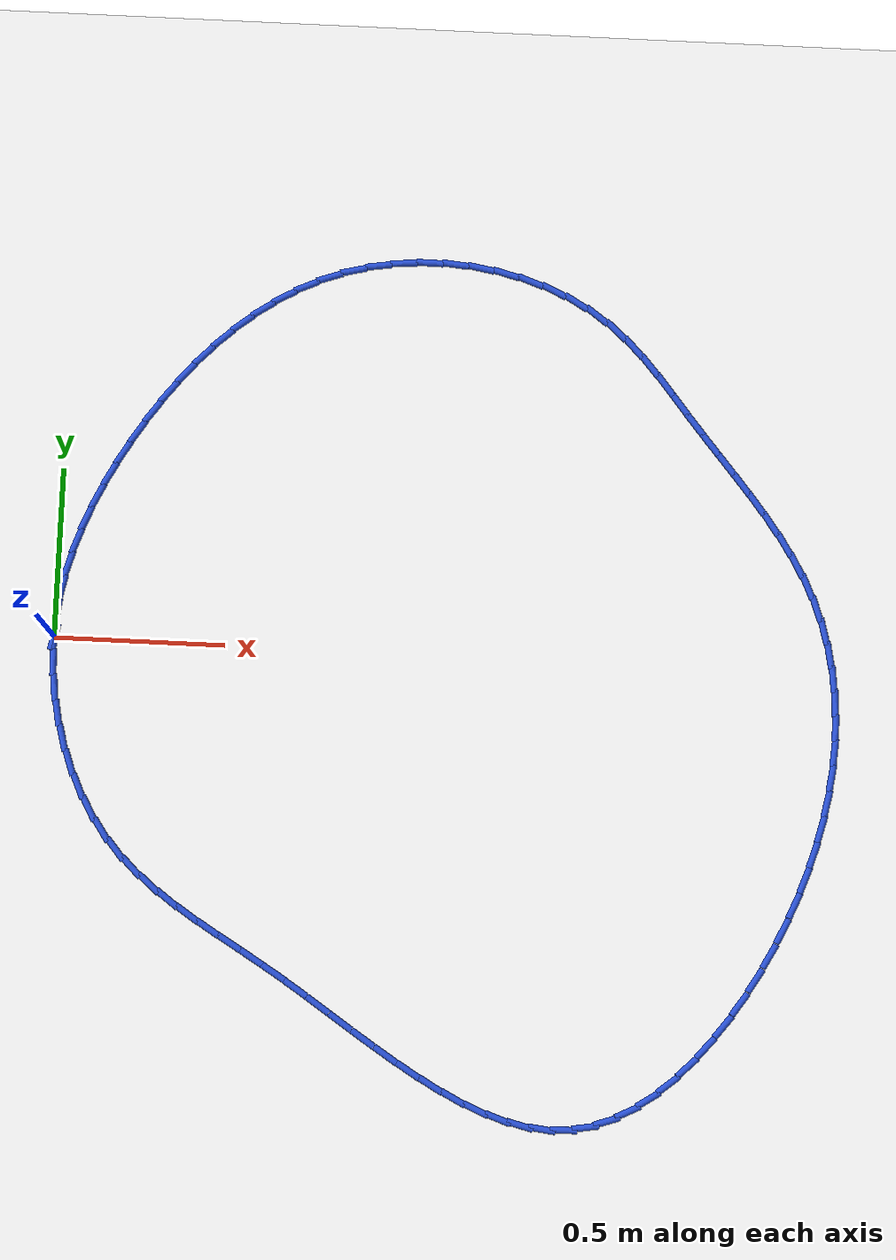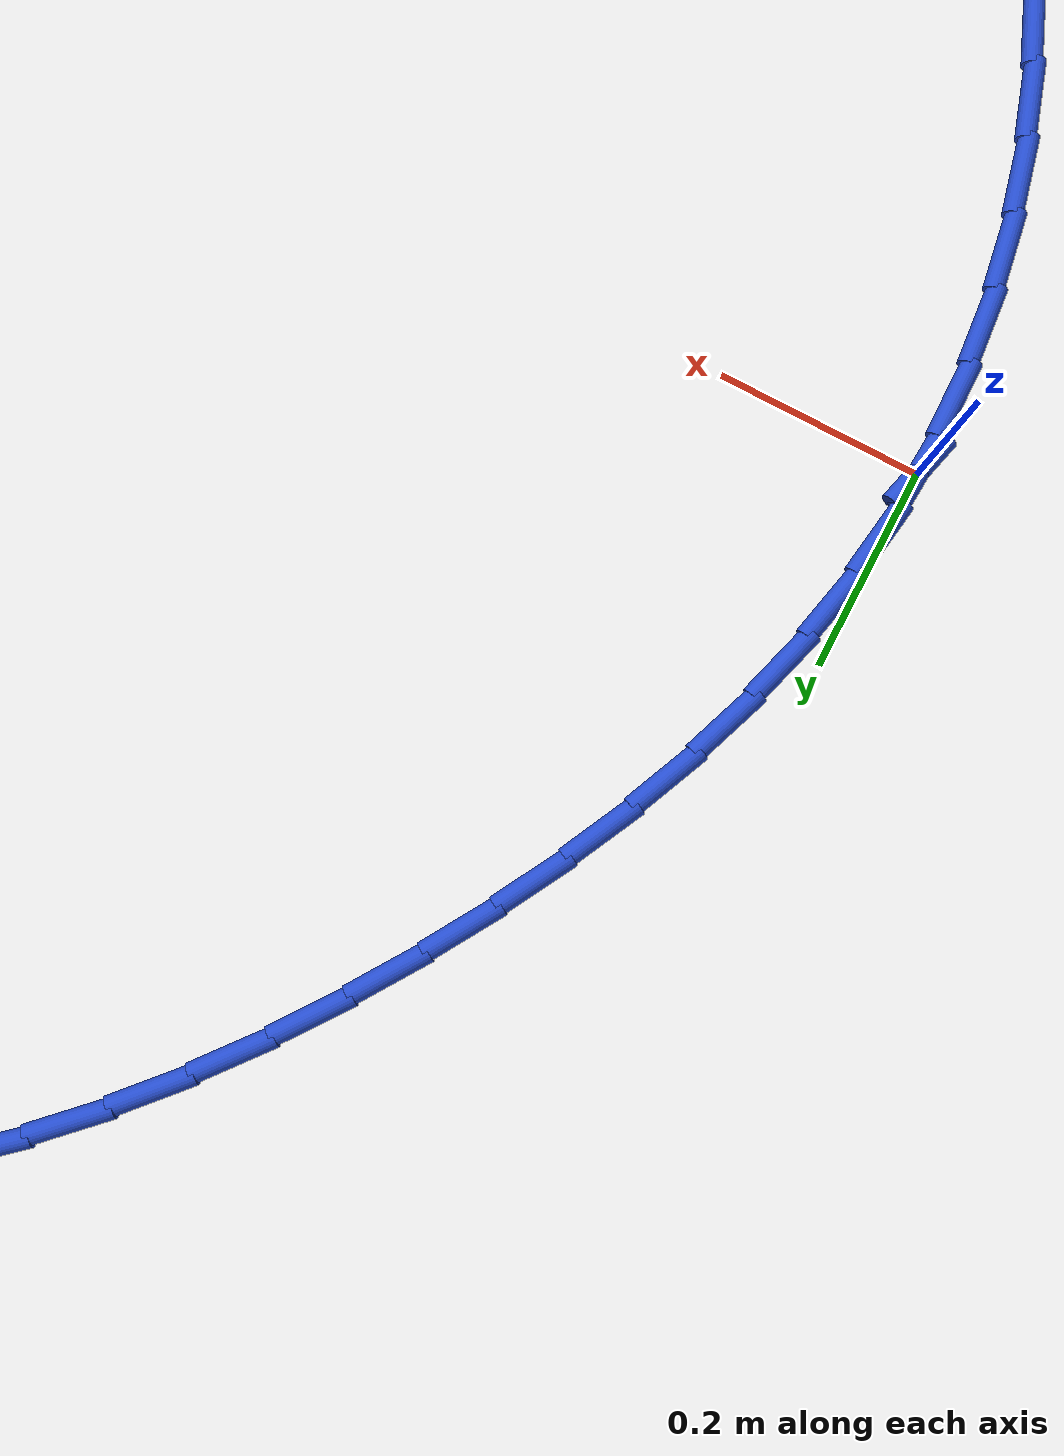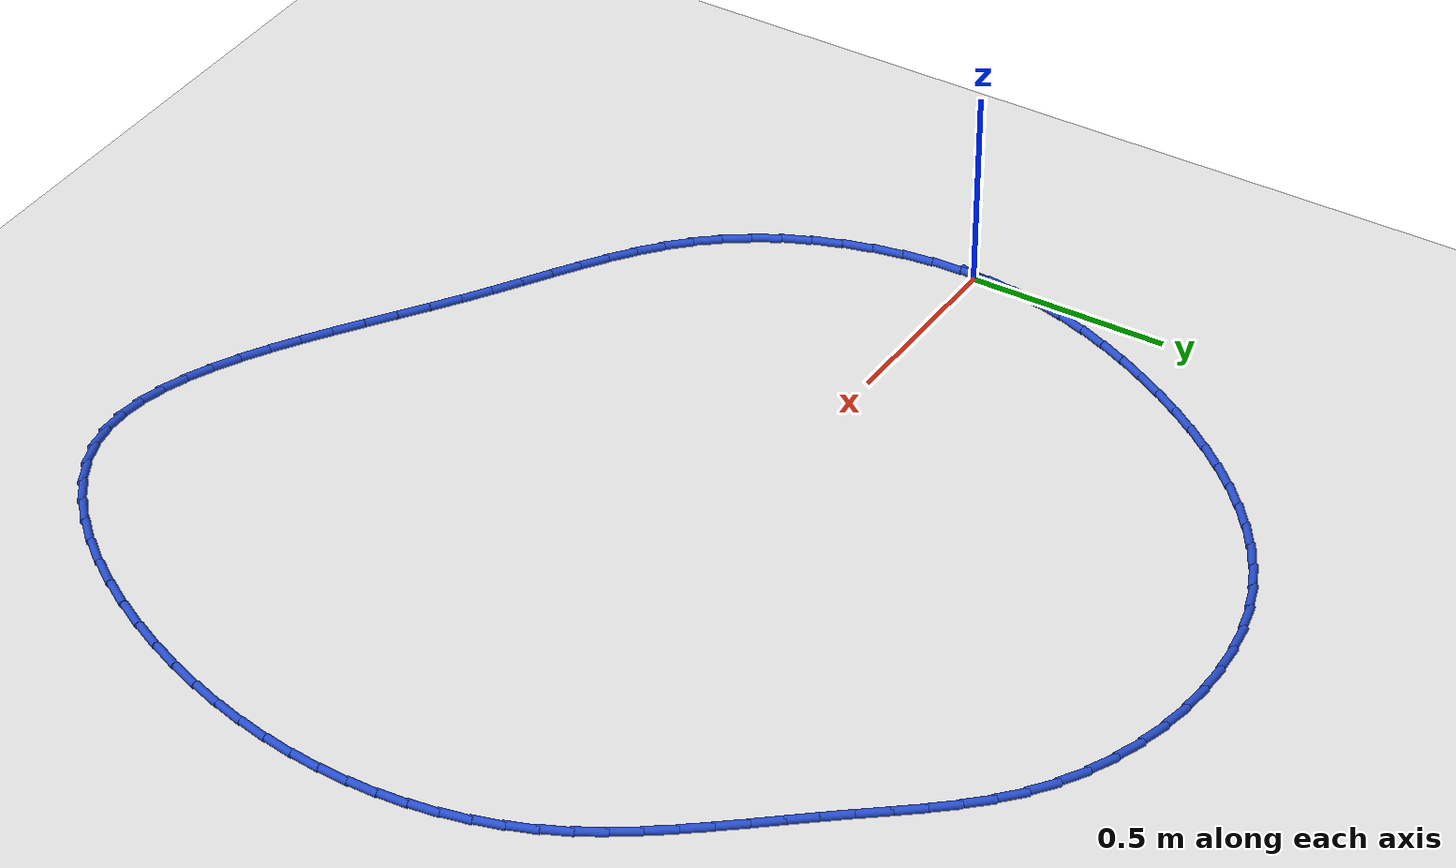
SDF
<sdf version="1.6">
 <world name="default">
  <light name="sun" type="directional">
   <pose>0 0 10 0 -0 0</pose>
   <diffuse>0.8 0.8 0.8 1</diffuse>
   <specular>0.2 0.2 0.2 1</specular>
   <attenuation>
    <range>1000</range>
    <constant>0.9</constant>
    <linear>0.01</linear>
    <quadratic>0.001</quadratic>
   </attenuation>
   <direction>-0.5 0.1 -0.9</direction>
  </light>
  <model name="ground_plane">
   <static>1</static>
   <link name="link">
    <collision name="collision">
     <geometry><plane><normal>0 0 1</normal><size>100 100</size></plane></geometry>
     <surface><friction><ode><mu>100</mu><mu2>50</mu2></ode></friction></surface>
    </collision>
    <visual name="visual">
     <cast_shadows>0</cast_shadows>
     <geometry><plane><normal>0 0 1</normal><size>100 100</size></plane></geometry>
     <material>
      <script><uri>file://media/materials/scripts/gazebo.material</uri><name>Gazebo/WhiteGlow</name></script>
     </material>
    </visual>
   </link>
  </model>
  <gravity>0 0 -9.8</gravity>
  <magnetic_field>6e-06 2.3e-05 -4.2e-05</magnetic_field>
  <atmosphere type="adiabatic"/>
  <physics name="default_physics" default="0" type="ode">
   <max_step_size>0.001</max_step_size>
   <real_time_factor>1</real_time_factor>
   <real_time_update_rate>1000</real_time_update_rate>
  </physics>
  <scene><ambient>0.4 0.4 0.4 1</ambient><background>0.7 0.7 0.7 1</background><shadows>1</shadows></scene>
  <spherical_coordinates>
   <surface_model>EARTH_WGS84</surface_model>
   <latitude_deg>0</latitude_deg>
   <longitude_deg>0</longitude_deg>
   <elevation>0</elevation>
   <heading_deg>0</heading_deg>
  </spherical_coordinates>
  <model name="line">
   <link name="link_0">
    <pose>-3.122502256758253e-17 1.5265566588595902e-16 0.01 0 1.57 1.5106466289566562</pose>
    <collision name="collision">
     <geometry><cylinder><radius>0.01</radius><length>0.08</length></cylinder></geometry>
    </collision>
    <visual name="visual">
     <material>
      <script><name>Gazebo/Blue</name><uri>file://media/materials/scripts/gazebo.material</uri></script>
     </material>
     <geometry><cylinder><radius>0.01</radius><length>0.08</length></cylinder></geometry>
    </visual>
   </link>
   <link name="link_1">
    <pose>0.004422667985776478 0.07343898873028362 0.01 0 1.57 1.4321928605939223</pose>
    <collision name="collision">
     <geometry><cylinder><radius>0.01</radius><length>0.08</length></cylinder></geometry>
    </collision>
    <visual name="visual">
     <material>
      <script><name>Gazebo/Blue</name><uri>file://media/materials/scripts/gazebo.material</uri></script>
     </material>
     <geometry><cylinder><radius>0.01</radius><length>0.08</length></cylinder></geometry>
    </visual>
   </link>
   <link name="link_2">
    <pose>0.014511743764656863 0.14576319782944486 0.01 0 1.57 1.3582579992840003</pose>
    <collision name="collision">
     <geometry><cylinder><radius>0.01</radius><length>0.08</length></cylinder></geometry>
    </collision>
    <visual name="visual">
     <material>
      <script><name>Gazebo/Blue</name><uri>file://media/materials/scripts/gazebo.material</uri></script>
     </material>
     <geometry><cylinder><radius>0.01</radius><length>0.08</length></cylinder></geometry>
    </visual>
   </link>
   <link name="link_3">
    <pose>0.029877220970912183 0.21696640965506822 0.01 0 1.57 1.289462771870347</pose>
    <collision name="collision">
     <geometry><cylinder><radius>0.01</radius><length>0.08</length></cylinder></geometry>
    </collision>
    <visual name="visual">
     <material>
      <script><name>Gazebo/Blue</name><uri>file://media/materials/scripts/gazebo.material</uri></script>
     </material>
     <geometry><cylinder><radius>0.01</radius><length>0.08</length></cylinder></geometry>
    </visual>
   </link>
   <link name="link_4">
    <pose>0.05012909323881358 0.28704240656473845 0.01 0 1.57 1.2261535325158432</pose>
    <collision name="collision">
     <geometry><cylinder><radius>0.01</radius><length>0.08</length></cylinder></geometry>
    </collision>
    <visual name="visual">
     <material>
      <script><name>Gazebo/Blue</name><uri>file://media/materials/scripts/gazebo.material</uri></script>
     </material>
     <geometry><cylinder><radius>0.01</radius><length>0.08</length></cylinder></geometry>
    </visual>
   </link>
   <link name="link_5">
    <pose>0.07487735420263211 0.35598497091603976 0.01 0 1.57 1.1684460161876304</pose>
    <collision name="collision">
     <geometry><cylinder><radius>0.01</radius><length>0.08</length></cylinder></geometry>
    </collision>
    <visual name="visual">
     <material>
      <script><name>Gazebo/Blue</name><uri>file://media/materials/scripts/gazebo.material</uri></script>
     </material>
     <geometry><cylinder><radius>0.01</radius><length>0.08</length></cylinder></geometry>
    </visual>
   </link>
   <link name="link_6">
    <pose>0.10373199749663888 0.4237878850665568 0.01 0 1.57 1.1162813376743865</pose>
    <collision name="collision">
     <geometry><cylinder><radius>0.01</radius><length>0.08</length></cylinder></geometry>
    </collision>
    <visual name="visual">
     <material>
      <script><name>Gazebo/Blue</name><uri>file://media/materials/scripts/gazebo.material</uri></script>
     </material>
     <geometry><cylinder><radius>0.01</radius><length>0.08</length></cylinder></geometry>
    </visual>
   </link>
   <link name="link_7">
    <pose>0.13630301675510492 0.49044493137387374 0.01 0 1.57 1.0694820513371346</pose>
    <collision name="collision">
     <geometry><cylinder><radius>0.01</radius><length>0.08</length></cylinder></geometry>
    </collision>
    <visual name="visual">
     <material>
      <script><name>Gazebo/Blue</name><uri>file://media/materials/scripts/gazebo.material</uri></script>
     </material>
     <geometry><cylinder><radius>0.01</radius><length>0.08</length></cylinder></geometry>
    </visual>
   </link>
   <link name="link_8">
    <pose>0.17220040561230143 0.5559498921955756 0.01 0 1.57 1.027632231569366</pose>
    <collision name="collision">
     <geometry><cylinder><radius>0.01</radius><length>0.08</length></cylinder></geometry>
    </collision>
    <visual name="visual">
     <material>
      <script><name>Gazebo/Blue</name><uri>file://media/materials/scripts/gazebo.material</uri></script>
     </material>
     <geometry><cylinder><radius>0.01</radius><length>0.08</length></cylinder></geometry>
    </visual>
   </link>
   <link name="link_9">
    <pose>0.21104302168899725 0.6202866800297875 0.01 0 1.57 0.9866758526666474</pose>
    <collision name="collision">
     <geometry><cylinder><radius>0.01</radius><length>0.08</length></cylinder></geometry>
    </collision>
    <visual name="visual">
     <material>
      <script><name>Gazebo/Blue</name><uri>file://media/materials/scripts/gazebo.material</uri></script>
     </material>
     <geometry><cylinder><radius>0.01</radius><length>0.08</length></cylinder></geometry>
    </visual>
   </link>
   <link name="link_10">
    <pose>0.25264658280595037 0.6832200077506951 0.01 0 1.57 0.9425172798996873</pose>
    <collision name="collision">
     <geometry><cylinder><radius>0.01</radius><length>0.08</length></cylinder></geometry>
    </collision>
    <visual name="visual">
     <material>
      <script><name>Gazebo/Blue</name><uri>file://media/materials/scripts/gazebo.material</uri></script>
     </material>
     <geometry><cylinder><radius>0.01</radius><length>0.08</length></cylinder></geometry>
    </visual>
   </link>
   <link name="link_11">
    <pose>0.29701984874768633 0.7442996401329439 0.01 0 1.57 0.8945373216574029</pose>
    <collision name="collision">
     <geometry><cylinder><radius>0.01</radius><length>0.08</length></cylinder></geometry>
    </collision>
    <visual name="visual">
     <material>
      <script><name>Gazebo/Blue</name><uri>file://media/materials/scripts/gazebo.material</uri></script>
     </material>
     <geometry><cylinder><radius>0.01</radius><length>0.08</length></cylinder></geometry>
    </visual>
   </link>
   <link name="link_12">
    <pose>0.34417967954614853 0.803066322498858 0.01 0 1.57 0.8422578252930394</pose>
    <collision name="collision">
     <geometry><cylinder><radius>0.01</radius><length>0.08</length></cylinder></geometry>
    </collision>
    <visual name="visual">
     <material>
      <script><name>Gazebo/Blue</name><uri>file://media/materials/scripts/gazebo.material</uri></script>
     </material>
     <geometry><cylinder><radius>0.01</radius><length>0.08</length></cylinder></geometry>
    </visual>
   </link>
   <link name="link_13">
    <pose>0.39414293523328037 0.8590608001707624 0.01 0 1.57 0.7852037249668663</pose>
    <collision name="collision">
     <geometry><cylinder><radius>0.01</radius><length>0.08</length></cylinder></geometry>
    </collision>
    <visual name="visual">
     <material>
      <script><name>Gazebo/Blue</name><uri>file://media/materials/scripts/gazebo.material</uri></script>
     </material>
     <geometry><cylinder><radius>0.01</radius><length>0.08</length></cylinder></geometry>
    </visual>
   </link>
   <link name="link_14">
    <pose>0.4469264758410251 0.911823818470981 0.01 0 1.57 0.7229311199375612</pose>
    <collision name="collision">
     <geometry><cylinder><radius>0.01</radius><length>0.08</length></cylinder></geometry>
    </collision>
    <visual name="visual">
     <material>
      <script><name>Gazebo/Blue</name><uri>file://media/materials/scripts/gazebo.material</uri></script>
     </material>
     <geometry><cylinder><radius>0.01</radius><length>0.08</length></cylinder></geometry>
    </visual>
   </link>
   <link name="link_15">
    <pose>0.502547161401326 0.9608961227218383 0.01 0 1.57 0.6550700705237344</pose>
    <collision name="collision">
     <geometry><cylinder><radius>0.01</radius><length>0.08</length></cylinder></geometry>
    </collision>
    <visual name="visual">
     <material>
      <script><name>Gazebo/Blue</name><uri>file://media/materials/scripts/gazebo.material</uri></script>
     </material>
     <geometry><cylinder><radius>0.01</radius><length>0.08</length></cylinder></geometry>
    </visual>
   </link>
   <link name="link_16">
    <pose>0.5610218519461265 1.0058184582456584 0.01 0 1.57 0.5813838094349902</pose>
    <collision name="collision">
     <geometry><cylinder><radius>0.01</radius><length>0.08</length></cylinder></geometry>
    </collision>
    <visual name="visual">
     <material>
      <script><name>Gazebo/Blue</name><uri>file://media/materials/scripts/gazebo.material</uri></script>
     </material>
     <geometry><cylinder><radius>0.01</radius><length>0.08</length></cylinder></geometry>
    </visual>
   </link>
   <link name="link_17">
    <pose>0.6223674075073702 1.0461315703647662 0.01 0 1.57 0.5018425837730727</pose>
    <collision name="collision">
     <geometry><cylinder><radius>0.01</radius><length>0.08</length></cylinder></geometry>
    </collision>
    <visual name="visual">
     <material>
      <script><name>Gazebo/Blue</name><uri>file://media/materials/scripts/gazebo.material</uri></script>
     </material>
     <geometry><cylinder><radius>0.01</radius><length>0.08</length></cylinder></geometry>
    </visual>
   </link>
   <link name="link_18">
    <pose>0.6866006881169999 1.0813762044014856 0.01 0 1.57 0.41670401750907937</pose>
    <collision name="collision">
     <geometry><cylinder><radius>0.01</radius><length>0.08</length></cylinder></geometry>
    </collision>
    <visual name="visual">
     <material>
      <script><name>Gazebo/Blue</name><uri>file://media/materials/scripts/gazebo.material</uri></script>
     </material>
     <geometry><cylinder><radius>0.01</radius><length>0.08</length></cylinder></geometry>
    </visual>
   </link>
   <link name="link_19">
    <pose>0.7537385538069593 1.1110931056781408 0.01 0 1.57 0.3265944663939121</pose>
    <collision name="collision">
     <geometry><cylinder><radius>0.01</radius><length>0.08</length></cylinder></geometry>
    </collision>
    <visual name="visual">
     <material>
      <script><name>Gazebo/Blue</name><uri>file://media/materials/scripts/gazebo.material</uri></script>
     </material>
     <geometry><cylinder><radius>0.01</radius><length>0.08</length></cylinder></geometry>
    </visual>
   </link>
   <link name="link_20">
    <pose>0.8237969902409511 1.1348235938094802 0.01 0 1.57 0.23502691303227033</pose>
    <collision name="collision">
     <geometry><cylinder><radius>0.01</radius><length>0.08</length></cylinder></geometry>
    </collision>
    <visual name="visual">
     <material>
      <script><name>Gazebo/Blue</name><uri>file://media/materials/scripts/gazebo.material</uri></script>
     </material>
     <geometry><cylinder><radius>0.01</radius><length>0.08</length></cylinder></geometry>
    </visual>
   </link>
   <link name="link_21">
    <pose>0.896576181913706 1.1522507284352816 0.01 0 1.57 0.1477535587884855</pose>
    <collision name="collision">
     <geometry><cylinder><radius>0.01</radius><length>0.08</length></cylinder></geometry>
    </collision>
    <visual name="visual">
     <material>
      <script><name>Gazebo/Blue</name><uri>file://media/materials/scripts/gazebo.material</uri></script>
     </material>
     <geometry><cylinder><radius>0.01</radius><length>0.08</length></cylinder></geometry>
    </visual>
   </link>
   <link name="link_22">
    <pose>0.9713789510309757 1.1633842409349868 0.01 0 1.57 0.06427537053469783</pose>
    <collision name="collision">
     <geometry><cylinder><radius>0.01</radius><length>0.08</length></cylinder></geometry>
    </collision>
    <visual name="visual">
     <material>
      <script><name>Gazebo/Blue</name><uri>file://media/materials/scripts/gazebo.material</uri></script>
     </material>
     <geometry><cylinder><radius>0.01</radius><length>0.08</length></cylinder></geometry>
    </visual>
   </link>
   <link name="link_23">
    <pose>1.0474382912328684 1.1682797266779728 0.01 0 1.57 -0.016810487573213993</pose>
    <collision name="collision">
     <geometry><cylinder><radius>0.01</radius><length>0.08</length></cylinder></geometry>
    </collision>
    <visual name="visual">
     <material>
      <script><name>Gazebo/Blue</name><uri>file://media/materials/scripts/gazebo.material</uri></script>
     </material>
     <geometry><cylinder><radius>0.01</radius><length>0.08</length></cylinder></geometry>
    </visual>
   </link>
   <link name="link_24">
    <pose>1.1239871961594923 1.1669927810336176 0.01 0 1.57 -0.0968981519242051</pose>
    <collision name="collision">
     <geometry><cylinder><radius>0.01</radius><length>0.08</length></cylinder></geometry>
    </collision>
    <visual name="visual">
     <material>
      <script><name>Gazebo/Blue</name><uri>file://media/materials/scripts/gazebo.material</uri></script>
     </material>
     <geometry><cylinder><radius>0.01</radius><length>0.08</length></cylinder></geometry>
    </visual>
   </link>
   <link name="link_25">
    <pose>1.2002586594509561 1.1595789993712988 0.01 0 1.57 -0.17737384838121445</pose>
    <collision name="collision">
     <geometry><cylinder><radius>0.01</radius><length>0.08</length></cylinder></geometry>
    </collision>
    <visual name="visual">
     <material>
      <script><name>Gazebo/Blue</name><uri>file://media/materials/scripts/gazebo.material</uri></script>
     </material>
     <geometry><cylinder><radius>0.01</radius><length>0.08</length></cylinder></geometry>
    </visual>
   </link>
   <link name="link_26">
    <pose>1.2754856747473693 1.1460939770603942 0.01 0 1.57 -0.2596252934693405</pose>
    <collision name="collision">
     <geometry><cylinder><radius>0.01</radius><length>0.08</length></cylinder></geometry>
    </collision>
    <visual name="visual">
     <material>
      <script><name>Gazebo/Blue</name><uri>file://media/materials/scripts/gazebo.material</uri></script>
     </material>
     <geometry><cylinder><radius>0.01</radius><length>0.08</length></cylinder></geometry>
    </visual>
   </link>
   <link name="link_27">
    <pose>1.348901235688839 1.1265933094702816 0.01 0 1.57 -0.3450476171401285</pose>
    <collision name="collision">
     <geometry><cylinder><radius>0.01</radius><length>0.08</length></cylinder></geometry>
    </collision>
    <visual name="visual">
     <material>
      <script><name>Gazebo/Blue</name><uri>file://media/materials/scripts/gazebo.material</uri></script>
     </material>
     <geometry><cylinder><radius>0.01</radius><length>0.08</length></cylinder></geometry>
    </visual>
   </link>
   <link name="link_28">
    <pose>1.419738335915474 1.1011325919703383 0.01 0 1.57 -0.43503303622249073</pose>
    <collision name="collision">
     <geometry><cylinder><radius>0.01</radius><length>0.08</length></cylinder></geometry>
    </collision>
    <visual name="visual">
     <material>
      <script><name>Gazebo/Blue</name><uri>file://media/materials/scripts/gazebo.material</uri></script>
     </material>
     <geometry><cylinder><radius>0.01</radius><length>0.08</length></cylinder></geometry>
    </visual>
   </link>
   <link name="link_29">
    <pose>1.4872299690673834 1.0697674199299427 0.01 0 1.57 -0.5309286219985616</pose>
    <collision name="collision">
     <geometry><cylinder><radius>0.01</radius><length>0.08</length></cylinder></geometry>
    </collision>
    <visual name="visual">
     <material>
      <script><name>Gazebo/Blue</name><uri>file://media/materials/scripts/gazebo.material</uri></script>
     </material>
     <geometry><cylinder><radius>0.01</radius><length>0.08</length></cylinder></geometry>
    </visual>
   </link>
   <link name="link_30">
    <pose>1.550609128784676 1.0325533887184726 0.01 0 1.57 -0.6337647439794496</pose>
    <collision name="collision">
     <geometry><cylinder><radius>0.01</radius><length>0.08</length></cylinder></geometry>
    </collision>
    <visual name="visual">
     <material>
      <script><name>Gazebo/Blue</name><uri>file://media/materials/scripts/gazebo.material</uri></script>
     </material>
     <geometry><cylinder><radius>0.01</radius><length>0.08</length></cylinder></geometry>
    </visual>
   </link>
   <link name="link_31">
    <pose>1.6091211284581806 0.9895531108572627 0.01 0 1.57 -0.7330234857782364</pose>
    <collision name="collision">
     <geometry><cylinder><radius>0.01</radius><length>0.08</length></cylinder></geometry>
    </collision>
    <visual name="visual">
     <material>
      <script><name>Gazebo/Blue</name><uri>file://media/materials/scripts/gazebo.material</uri></script>
     </material>
     <geometry><cylinder><radius>0.01</radius><length>0.08</length></cylinder></geometry>
    </visual>
   </link>
   <link name="link_32">
    <pose>1.6627615193005032 0.9412565234880211 0.01 0 1.57 -0.8098471852739644</pose>
    <collision name="collision">
     <geometry><cylinder><radius>0.01</radius><length>0.08</length></cylinder></geometry>
    </collision>
    <visual name="visual">
     <material>
      <script><name>Gazebo/Blue</name><uri>file://media/materials/scripts/gazebo.material</uri></script>
     </material>
     <geometry><cylinder><radius>0.01</radius><length>0.08</length></cylinder></geometry>
    </visual>
   </link>
   <link name="link_33">
    <pose>1.7126951214168646 0.8888195624146752 0.01 0 1.57 -0.8617705185764719</pose>
    <collision name="collision">
     <geometry><cylinder><radius>0.01</radius><length>0.08</length></cylinder></geometry>
    </collision>
    <visual name="visual">
     <material>
      <script><name>Gazebo/Blue</name><uri>file://media/materials/scripts/gazebo.material</uri></script>
     </material>
     <geometry><cylinder><radius>0.01</radius><length>0.08</length></cylinder></geometry>
    </visual>
   </link>
   <link name="link_34">
    <pose>1.7601880889645143 0.8334558818526442 0.01 0 1.57 -0.8890749418161484</pose>
    <collision name="collision">
     <geometry><cylinder><radius>0.01</radius><length>0.08</length></cylinder></geometry>
    </collision>
    <visual name="visual">
     <material>
      <script><name>Gazebo/Blue</name><uri>file://media/materials/scripts/gazebo.material</uri></script>
     </material>
     <geometry><cylinder><radius>0.01</radius><length>0.08</length></cylinder></geometry>
    </visual>
   </link>
   <link name="link_35">
    <pose>1.8065065761007026 0.776379136017347 0.01 0 1.57 -0.8923677818348755</pose>
    <collision name="collision">
     <geometry><cylinder><radius>0.01</radius><length>0.08</length></cylinder></geometry>
    </collision>
    <visual name="visual">
     <material>
      <script><name>Gazebo/Blue</name><uri>file://media/materials/scripts/gazebo.material</uri></script>
     </material>
     <geometry><cylinder><radius>0.01</radius><length>0.08</length></cylinder></geometry>
    </visual>
   </link>
   <link name="link_36">
    <pose>1.8529167357355634 0.7188029781806928 0.01 0 1.57 -0.8781910320669263</pose>
    <collision name="collision">
     <geometry><cylinder><radius>0.01</radius><length>0.08</length></cylinder></geometry>
    </collision>
    <visual name="visual">
     <material>
      <script><name>Gazebo/Blue</name><uri>file://media/materials/scripts/gazebo.material</uri></script>
     </material>
     <geometry><cylinder><radius>0.01</radius><length>0.08</length></cylinder></geometry>
    </visual>
   </link>
   <link name="link_37">
    <pose>1.9003233581970567 0.661667671143219 0.01 0 1.57 -0.8699044792927911</pose>
    <collision name="collision">
     <geometry><cylinder><radius>0.01</radius><length>0.08</length></cylinder></geometry>
    </collision>
    <visual name="visual">
     <material>
      <script><name>Gazebo/Blue</name><uri>file://media/materials/scripts/gazebo.material</uri></script>
     </material>
     <geometry><cylinder><radius>0.01</radius><length>0.08</length></cylinder></geometry>
    </visual>
   </link>
   <link name="link_38">
    <pose>1.9482507935630646 0.604869099484578 0.01 0 1.57 -0.872981591721535</pose>
    <collision name="collision">
     <geometry><cylinder><radius>0.01</radius><length>0.08</length></cylinder></geometry>
    </collision>
    <visual name="visual">
     <material>
      <script><name>Gazebo/Blue</name><uri>file://media/materials/scripts/gazebo.material</uri></script>
     </material>
     <geometry><cylinder><radius>0.01</radius><length>0.08</length></cylinder></geometry>
    </visual>
   </link>
   <link name="link_39">
    <pose>1.99589380972343 0.5480538009118112 0.01 0 1.57 -0.8875308622832685</pose>
    <collision name="collision">
     <geometry><cylinder><radius>0.01</radius><length>0.08</length></cylinder></geometry>
    </collision>
    <visual name="visual">
     <material>
      <script><name>Gazebo/Blue</name><uri>file://media/materials/scripts/gazebo.material</uri></script>
     </material>
     <geometry><cylinder><radius>0.01</radius><length>0.08</length></cylinder></geometry>
    </visual>
   </link>
   <link name="link_40">
    <pose>2.0424471745679935 0.4908683131319601 0.01 0 1.57 -0.9138760378308426</pose>
    <collision name="collision">
     <geometry><cylinder><radius>0.01</radius><length>0.08</length></cylinder></geometry>
    </collision>
    <visual name="visual">
     <material>
      <script><name>Gazebo/Blue</name><uri>file://media/materials/scripts/gazebo.material</uri></script>
     </material>
     <geometry><cylinder><radius>0.01</radius><length>0.08</length></cylinder></geometry>
    </visual>
   </link>
   <link name="link_41">
    <pose>2.0871056559865977 0.43295917385206567 0.01 0 1.57 -0.9525104047329664</pose>
    <collision name="collision">
     <geometry><cylinder><radius>0.01</radius><length>0.08</length></cylinder></geometry>
    </collision>
    <visual name="visual">
     <material>
      <script><name>Gazebo/Blue</name><uri>file://media/materials/scripts/gazebo.material</uri></script>
     </material>
     <geometry><cylinder><radius>0.01</radius><length>0.08</length></cylinder></geometry>
    </visual>
   </link>
   <link name="link_42">
    <pose>2.129064021869083 0.37397292077916966 0.01 0 1.57 -1.003997073342539</pose>
    <collision name="collision">
     <geometry><cylinder><radius>0.01</radius><length>0.08</length></cylinder></geometry>
    </collision>
    <visual name="visual">
     <material>
      <script><name>Gazebo/Blue</name><uri>file://media/materials/scripts/gazebo.material</uri></script>
     </material>
     <geometry><cylinder><radius>0.01</radius><length>0.08</length></cylinder></geometry>
    </visual>
   </link>
   <link name="link_43">
    <pose>2.167517040105291 0.31355609162031245 0.01 0 1.57 -1.068793314864835</pose>
    <collision name="collision">
     <geometry><cylinder><radius>0.01</radius><length>0.08</length></cylinder></geometry>
    </collision>
    <visual name="visual">
     <material>
      <script><name>Gazebo/Blue</name><uri>file://media/materials/scripts/gazebo.material</uri></script>
     </material>
     <geometry><cylinder><radius>0.01</radius><length>0.08</length></cylinder></geometry>
    </visual>
   </link>
   <link name="link_44">
    <pose>2.201659478585064 0.251355224082536 0.01 0 1.57 -1.146162352315619</pose>
    <collision name="collision">
     <geometry><cylinder><radius>0.01</radius><length>0.08</length></cylinder></geometry>
    </collision>
    <visual name="visual">
     <material>
      <script><name>Gazebo/Blue</name><uri>file://media/materials/scripts/gazebo.material</uri></script>
     </material>
     <geometry><cylinder><radius>0.01</radius><length>0.08</length></cylinder></geometry>
    </visual>
   </link>
   <link name="link_45">
    <pose>2.2307357090573077 0.1870475156303853 0.01 0 1.57 -1.2268262341280152</pose>
    <collision name="collision">
     <geometry><cylinder><radius>0.01</radius><length>0.08</length></cylinder></geometry>
    </collision>
    <visual name="visual">
     <material>
      <script><name>Gazebo/Blue</name><uri>file://media/materials/scripts/gazebo.material</uri></script>
     </material>
     <geometry><cylinder><radius>0.01</radius><length>0.08</length></cylinder></geometry>
    </visual>
   </link>
   <link name="link_46">
    <pose>2.2545235832966575 0.12063990356176446 0.01 0 1.57 -1.304886785239946</pose>
    <collision name="collision">
     <geometry><cylinder><radius>0.01</radius><length>0.08</length></cylinder></geometry>
    </collision>
    <visual name="visual">
     <material>
      <script><name>Gazebo/Blue</name><uri>file://media/materials/scripts/gazebo.material</uri></script>
     </material>
     <geometry><cylinder><radius>0.01</radius><length>0.08</length></cylinder></geometry>
    </visual>
   </link>
   <link name="link_47">
    <pose>2.273125687652935 0.05234004107684881 0.01 0 1.57 -1.37990534078193</pose>
    <collision name="collision">
     <geometry><cylinder><radius>0.01</radius><length>0.08</length></cylinder></geometry>
    </collision>
    <visual name="visual">
     <material>
      <script><name>Gazebo/Blue</name><uri>file://media/materials/scripts/gazebo.material</uri></script>
     </material>
     <geometry><cylinder><radius>0.01</radius><length>0.08</length></cylinder></geometry>
    </visual>
   </link>
   <link name="link_48">
    <pose>2.2866492104965093 -0.0176415741512623 0.01 0 1.57 -1.4516738991453735</pose>
    <collision name="collision">
     <geometry><cylinder><radius>0.01</radius><length>0.08</length></cylinder></geometry>
    </collision>
    <visual name="visual">
     <material>
      <script><name>Gazebo/Blue</name><uri>file://media/materials/scripts/gazebo.material</uri></script>
     </material>
     <geometry><cylinder><radius>0.01</radius><length>0.08</length></cylinder></geometry>
    </visual>
   </link>
   <link name="link_49">
    <pose>2.2952013401977487 -0.08909444444947084 0.01 0 1.57 -1.5201212650682479</pose>
    <collision name="collision">
     <geometry><cylinder><radius>0.01</radius><length>0.08</length></cylinder></geometry>
    </collision>
    <visual name="visual">
     <material>
      <script><name>Gazebo/Blue</name><uri>file://media/materials/scripts/gazebo.material</uri></script>
     </material>
     <geometry><cylinder><radius>0.01</radius><length>0.08</length></cylinder></geometry>
    </visual>
   </link>
   <link name="link_50">
    <pose>2.2988892651270225 -0.1618080721446774 0.01 0 1.57 1.5563039151069362</pose>
    <collision name="collision">
     <geometry><cylinder><radius>0.01</radius><length>0.08</length></cylinder></geometry>
    </collision>
    <visual name="visual">
     <material>
      <script><name>Gazebo/Blue</name><uri>file://media/materials/scripts/gazebo.material</uri></script>
     </material>
     <geometry><cylinder><radius>0.01</radius><length>0.08</length></cylinder></geometry>
    </visual>
   </link>
   <link name="link_51">
    <pose>2.2978201736546997 -0.23557195956378324 0.01 0 1.57 1.4942885855897696</pose>
    <collision name="collision">
     <geometry><cylinder><radius>0.01</radius><length>0.08</length></cylinder></geometry>
    </collision>
    <visual name="visual">
     <material>
      <script><name>Gazebo/Blue</name><uri>file://media/materials/scripts/gazebo.material</uri></script>
     </material>
     <geometry><cylinder><radius>0.01</radius><length>0.08</length></cylinder></geometry>
    </visual>
   </link>
   <link name="link_52">
    <pose>2.292101254151149 -0.3101756090336892 0.01 0 1.57 1.4352356572457672</pose>
    <collision name="collision">
     <geometry><cylinder><radius>0.01</radius><length>0.08</length></cylinder></geometry>
    </collision>
    <visual name="visual">
     <material>
      <script><name>Gazebo/Blue</name><uri>file://media/materials/scripts/gazebo.material</uri></script>
     </material>
     <geometry><cylinder><radius>0.01</radius><length>0.08</length></cylinder></geometry>
    </visual>
   </link>
   <link name="link_53">
    <pose>2.2818396949867408 -0.38540852288129673 0.01 0 1.57 1.3789143856652109</pose>
    <collision name="collision">
     <geometry><cylinder><radius>0.01</radius><length>0.08</length></cylinder></geometry>
    </collision>
    <visual name="visual">
     <material>
      <script><name>Gazebo/Blue</name><uri>file://media/materials/scripts/gazebo.material</uri></script>
     </material>
     <geometry><cylinder><radius>0.01</radius><length>0.08</length></cylinder></geometry>
    </visual>
   </link>
   <link name="link_54">
    <pose>2.2671426845318416 -0.46106020343350657 0.01 0 1.57 1.3250698497416031</pose>
    <collision name="collision">
     <geometry><cylinder><radius>0.01</radius><length>0.08</length></cylinder></geometry>
    </collision>
    <visual name="visual">
     <material>
      <script><name>Gazebo/Blue</name><uri>file://media/materials/scripts/gazebo.material</uri></script>
     </material>
     <geometry><cylinder><radius>0.01</radius><length>0.08</length></cylinder></geometry>
    </visual>
   </link>
   <link name="link_55">
    <pose>2.2481174111568225 -0.5369201530172202 0.01 0 1.57 1.273435676652955</pose>
    <collision name="collision">
     <geometry><cylinder><radius>0.01</radius><length>0.08</length></cylinder></geometry>
    </collision>
    <visual name="visual">
     <material>
      <script><name>Gazebo/Blue</name><uri>file://media/materials/scripts/gazebo.material</uri></script>
     </material>
     <geometry><cylinder><radius>0.01</radius><length>0.08</length></cylinder></geometry>
    </visual>
   </link>
   <link name="link_56">
    <pose>2.2248710632320505 -0.6127778739593382 0.01 0 1.57 1.2237431566063957</pose>
    <collision name="collision">
     <geometry><cylinder><radius>0.01</radius><length>0.08</length></cylinder></geometry>
    </collision>
    <visual name="visual">
     <material>
      <script><name>Gazebo/Blue</name><uri>file://media/materials/scripts/gazebo.material</uri></script>
     </material>
     <geometry><cylinder><radius>0.01</radius><length>0.08</length></cylinder></geometry>
    </visual>
   </link>
   <link name="link_57">
    <pose>2.1975108291278955 -0.688422868586762 0.01 0 1.57 1.1757274042099768</pose>
    <collision name="collision">
     <geometry><cylinder><radius>0.01</radius><length>0.08</length></cylinder></geometry>
    </collision>
    <visual name="visual">
     <material>
      <script><name>Gazebo/Blue</name><uri>file://media/materials/scripts/gazebo.material</uri></script>
     </material>
     <geometry><cylinder><radius>0.01</radius><length>0.08</length></cylinder></geometry>
    </visual>
   </link>
   <link name="link_58">
    <pose>2.166143897318232 -0.7636446387248341 0.01 0 1.57 1.1287963283466869</pose>
    <collision name="collision">
     <geometry><cylinder><radius>0.01</radius><length>0.08</length></cylinder></geometry>
    </collision>
    <visual name="visual">
     <material>
      <script><name>Gazebo/Blue</name><uri>file://media/materials/scripts/gazebo.material</uri></script>
     </material>
     <geometry><cylinder><radius>0.01</radius><length>0.08</length></cylinder></geometry>
    </visual>
   </link>
   <link name="link_59">
    <pose>2.1309010958393966 -0.8381181334999436 0.01 0 1.57 1.0810138180351898</pose>
    <collision name="collision">
     <geometry><cylinder><radius>0.01</radius><length>0.08</length></cylinder></geometry>
    </collision>
    <visual name="visual">
     <material>
      <script><name>Gazebo/Blue</name><uri>file://media/materials/scripts/gazebo.material</uri></script>
     </material>
     <geometry><cylinder><radius>0.01</radius><length>0.08</length></cylinder></geometry>
    </visual>
   </link>
   <link name="link_60">
    <pose>2.092003210260493 -0.9110823854184681 0.01 0 1.57 1.030829341036797</pose>
    <collision name="collision">
     <geometry><cylinder><radius>0.01</radius><length>0.08</length></cylinder></geometry>
    </collision>
    <visual name="visual">
     <material>
      <script><name>Gazebo/Blue</name><uri>file://media/materials/scripts/gazebo.material</uri></script>
     </material>
     <geometry><cylinder><radius>0.01</radius><length>0.08</length></cylinder></geometry>
    </visual>
   </link>
   <link name="link_61">
    <pose>2.049692420795163 -0.9816727527213036 0.01 0 1.57 0.9768526758904261</pose>
    <collision name="collision">
     <geometry><cylinder><radius>0.01</radius><length>0.08</length></cylinder></geometry>
    </collision>
    <visual name="visual">
     <material>
      <script><name>Gazebo/Blue</name><uri>file://media/materials/scripts/gazebo.material</uri></script>
     </material>
     <geometry><cylinder><radius>0.01</radius><length>0.08</length></cylinder></geometry>
    </visual>
   </link>
   <link name="link_62">
    <pose>2.004210907657048 -1.0490245936493456 0.01 0 1.57 0.917516612332718</pose>
    <collision name="collision">
     <geometry><cylinder><radius>0.01</radius><length>0.08</length></cylinder></geometry>
    </collision>
    <visual name="visual">
     <material>
      <script><name>Gazebo/Blue</name><uri>file://media/materials/scripts/gazebo.material</uri></script>
     </material>
     <geometry><cylinder><radius>0.01</radius><length>0.08</length></cylinder></geometry>
    </visual>
   </link>
   <link name="link_63">
    <pose>1.955800851059788 -1.11227326644349 0.01 0 1.57 0.8509889065776606</pose>
    <collision name="collision">
     <geometry><cylinder><radius>0.01</radius><length>0.08</length></cylinder></geometry>
    </collision>
    <visual name="visual">
     <material>
      <script><name>Gazebo/Blue</name><uri>file://media/materials/scripts/gazebo.material</uri></script>
     </material>
     <geometry><cylinder><radius>0.01</radius><length>0.08</length></cylinder></geometry>
    </visual>
   </link>
   <link name="link_64">
    <pose>1.9047044312170256 -1.170554129344632 0.01 0 1.57 0.7750937655519035</pose>
    <collision name="collision">
     <geometry><cylinder><radius>0.01</radius><length>0.08</length></cylinder></geometry>
    </collision>
    <visual name="visual">
     <material>
      <script><name>Gazebo/Blue</name><uri>file://media/materials/scripts/gazebo.material</uri></script>
     </material>
     <geometry><cylinder><radius>0.01</radius><length>0.08</length></cylinder></geometry>
    </visual>
   </link>
   <link name="link_65">
    <pose>1.8511638283424023 -1.2230025405936682 0.01 0 1.57 0.6872720971506034</pose>
    <collision name="collision">
     <geometry><cylinder><radius>0.01</radius><length>0.08</length></cylinder></geometry>
    </collision>
    <visual name="visual">
     <material>
      <script><name>Gazebo/Blue</name><uri>file://media/materials/scripts/gazebo.material</uri></script>
     </material>
     <geometry><cylinder><radius>0.01</radius><length>0.08</length></cylinder></geometry>
    </visual>
   </link>
   <link name="link_66">
    <pose>1.7954212226495587 -1.268753858431493 0.01 0 1.57 0.5846512974491196</pose>
    <collision name="collision">
     <geometry><cylinder><radius>0.01</radius><length>0.08</length></cylinder></geometry>
    </collision>
    <visual name="visual">
     <material>
      <script><name>Gazebo/Blue</name><uri>file://media/materials/scripts/gazebo.material</uri></script>
     </material>
     <geometry><cylinder><radius>0.01</radius><length>0.08</length></cylinder></geometry>
    </visual>
   </link>
   <link name="link_67">
    <pose>1.7377187943521373 -1.3069434410990035 0.01 0 1.57 0.4643632104440996</pose>
    <collision name="collision">
     <geometry><cylinder><radius>0.01</radius><length>0.08</length></cylinder></geometry>
    </collision>
    <visual name="visual">
     <material>
      <script><name>Gazebo/Blue</name><uri>file://media/materials/scripts/gazebo.material</uri></script>
     </material>
     <geometry><cylinder><radius>0.01</radius><length>0.08</length></cylinder></geometry>
    </visual>
   </link>
   <link name="link_68">
    <pose>1.678298723663779 -1.3367066468370954 0.01 0 1.57 0.3243151845162046</pose>
    <collision name="collision">
     <geometry><cylinder><radius>0.01</radius><length>0.08</length></cylinder></geometry>
    </collision>
    <visual name="visual">
     <material>
      <script><name>Gazebo/Blue</name><uri>file://media/materials/scripts/gazebo.material</uri></script>
     </material>
     <geometry><cylinder><radius>0.01</radius><length>0.08</length></cylinder></geometry>
    </visual>
   </link>
   <link name="link_69">
    <pose>1.6174031907981246 -1.3571788338866628 0.01 0 1.57 0.16565153034428304</pose>
    <collision name="collision">
     <geometry><cylinder><radius>0.01</radius><length>0.08</length></cylinder></geometry>
    </collision>
    <visual name="visual">
     <material>
      <script><name>Gazebo/Blue</name><uri>file://media/materials/scripts/gazebo.material</uri></script>
     </material>
     <geometry><cylinder><radius>0.01</radius><length>0.08</length></cylinder></geometry>
    </visual>
   </link>
   <link name="link_70">
    <pose>1.5552694055042866 -1.3675665795123617 0.01 0 1.57 0.008056482765211091</pose>
    <collision name="collision">
     <geometry><cylinder><radius>0.01</radius><length>0.08</length></cylinder></geometry>
    </collision>
    <visual name="visual">
     <material>
      <script><name>Gazebo/Blue</name><uri>file://media/materials/scripts/gazebo.material</uri></script>
     </material>
     <geometry><cylinder><radius>0.01</radius><length>0.08</length></cylinder></geometry>
    </visual>
   </link>
   <link name="link_71">
    <pose>1.4920648326178605 -1.3680757970817985 0.01 0 1.57 -0.13059229764830155</pose>
    <collision name="collision">
     <geometry><cylinder><radius>0.01</radius><length>0.08</length></cylinder></geometry>
    </collision>
    <visual name="visual">
     <material>
      <script><name>Gazebo/Blue</name><uri>file://media/materials/scripts/gazebo.material</uri></script>
     </material>
     <geometry><cylinder><radius>0.01</radius><length>0.08</length></cylinder></geometry>
    </visual>
   </link>
   <link name="link_72">
    <pose>1.4279055198979802 -1.359649126674587 0.01 0 1.57 -0.24719220329782202</pose>
    <collision name="collision">
     <geometry><cylinder><radius>0.01</radius><length>0.08</length></cylinder></geometry>
    </collision>
    <visual name="visual">
     <material>
      <script><name>Gazebo/Blue</name><uri>file://media/materials/scripts/gazebo.material</uri></script>
     </material>
     <geometry><cylinder><radius>0.01</radius><length>0.08</length></cylinder></geometry>
    </visual>
   </link>
   <link name="link_73">
    <pose>1.362906317344287 -1.3432463704004336 0.01 0 1.57 -0.3422963794895482</pose>
    <collision name="collision">
     <geometry><cylinder><radius>0.01</radius><length>0.08</length></cylinder></geometry>
    </collision>
    <visual name="visual">
     <material>
      <script><name>Gazebo/Blue</name><uri>file://media/materials/scripts/gazebo.material</uri></script>
     </material>
     <geometry><cylinder><radius>0.01</radius><length>0.08</length></cylinder></geometry>
    </visual>
   </link>
   <link name="link_74">
    <pose>1.2971820749564242 -1.3198273303690464 0.01 0 1.57 -0.41814315346092057</pose>
    <collision name="collision">
     <geometry><cylinder><radius>0.01</radius><length>0.08</length></cylinder></geometry>
    </collision>
    <visual name="visual">
     <material>
      <script><name>Gazebo/Blue</name><uri>file://media/materials/scripts/gazebo.material</uri></script>
     </material>
     <geometry><cylinder><radius>0.01</radius><length>0.08</length></cylinder></geometry>
    </visual>
   </link>
   <link name="link_75">
    <pose>1.2308476427340314 -1.2903518086901307 0.01 0 1.57 -0.4774053236112525</pose>
    <collision name="collision">
     <geometry><cylinder><radius>0.01</radius><length>0.08</length></cylinder></geometry>
    </collision>
    <visual name="visual">
     <material>
      <script><name>Gazebo/Blue</name><uri>file://media/materials/scripts/gazebo.material</uri></script>
     </material>
     <geometry><cylinder><radius>0.01</radius><length>0.08</length></cylinder></geometry>
    </visual>
   </link>
   <link name="link_76">
    <pose>1.1640178706767519 -1.2557796074733942 0.01 0 1.57 -0.5225404323916316</pose>
    <collision name="collision">
     <geometry><cylinder><radius>0.01</radius><length>0.08</length></cylinder></geometry>
    </collision>
    <visual name="visual">
     <material>
      <script><name>Gazebo/Blue</name><uri>file://media/materials/scripts/gazebo.material</uri></script>
     </material>
     <geometry><cylinder><radius>0.01</radius><length>0.08</length></cylinder></geometry>
    </visual>
   </link>
   <link name="link_77">
    <pose>1.0968076087842262 -1.2170705288285426 0.01 0 1.57 -0.5555425165011207</pose>
    <collision name="collision">
     <geometry><cylinder><radius>0.01</radius><length>0.08</length></cylinder></geometry>
    </collision>
    <visual name="visual">
     <material>
      <script><name>Gazebo/Blue</name><uri>file://media/materials/scripts/gazebo.material</uri></script>
     </material>
     <geometry><cylinder><radius>0.01</radius><length>0.08</length></cylinder></geometry>
    </visual>
   </link>
   <link name="link_78">
    <pose>1.0293317070560963 -1.1751843748652835 0.01 0 1.57 -0.5778922171411178</pose>
    <collision name="collision">
     <geometry><cylinder><radius>0.01</radius><length>0.08</length></cylinder></geometry>
    </collision>
    <visual name="visual">
     <material>
      <script><name>Gazebo/Blue</name><uri>file://media/materials/scripts/gazebo.material</uri></script>
     </material>
     <geometry><cylinder><radius>0.01</radius><length>0.08</length></cylinder></geometry>
    </visual>
   </link>
   <link name="link_79">
    <pose>0.9617050154920036 -1.1310809476933228 0.01 0 1.57 -0.5905814436636074</pose>
    <collision name="collision">
     <geometry><cylinder><radius>0.01</radius><length>0.08</length></cylinder></geometry>
    </collision>
    <visual name="visual">
     <material>
      <script><name>Gazebo/Blue</name><uri>file://media/materials/scripts/gazebo.material</uri></script>
     </material>
     <geometry><cylinder><radius>0.01</radius><length>0.08</length></cylinder></geometry>
    </visual>
   </link>
   <link name="link_80">
    <pose>0.8940423840915892 -1.085720049422367 0.01 0 1.57 -0.5941516394241894</pose>
    <collision name="collision">
     <geometry><cylinder><radius>0.01</radius><length>0.08</length></cylinder></geometry>
    </collision>
    <visual name="visual">
     <material>
      <script><name>Gazebo/Blue</name><uri>file://media/materials/scripts/gazebo.material</uri></script>
     </material>
     <geometry><cylinder><radius>0.01</radius><length>0.08</length></cylinder></geometry>
    </visual>
   </link>
   <link name="link_81">
    <pose>0.8264586628544952 -1.0400614821621232 0.01 0 1.57 -0.588719259706811</pose>
    <collision name="collision">
     <geometry><cylinder><radius>0.01</radius><length>0.08</length></cylinder></geometry>
    </collision>
    <visual name="visual">
     <material>
      <script><name>Gazebo/Blue</name><uri>file://media/materials/scripts/gazebo.material</uri></script>
     </material>
     <geometry><cylinder><radius>0.01</radius><length>0.08</length></cylinder></geometry>
    </visual>
   </link>
   <link name="link_82">
    <pose>0.7590687017803632 -0.9950650480222982 0.01 0 1.57 -0.5739781669650257</pose>
    <collision name="collision">
     <geometry><cylinder><radius>0.01</radius><length>0.08</length></cylinder></geometry>
    </collision>
    <visual name="visual">
     <material>
      <script><name>Gazebo/Blue</name><uri>file://media/materials/scripts/gazebo.material</uri></script>
     </material>
     <geometry><cylinder><radius>0.01</radius><length>0.08</length></cylinder></geometry>
    </visual>
   </link>
   <link name="link_83">
    <pose>0.6919873508688348 -0.9516905491125983 0.01 0 1.57 -0.5529427685960913</pose>
    <collision name="collision">
     <geometry><cylinder><radius>0.01</radius><length>0.08</length></cylinder></geometry>
    </collision>
    <visual name="visual">
     <material>
      <script><name>Gazebo/Blue</name><uri>file://media/materials/scripts/gazebo.material</uri></script>
     </material>
     <geometry><cylinder><radius>0.01</radius><length>0.08</length></cylinder></geometry>
    </visual>
   </link>
   <link name="link_84">
    <pose>0.625393336939642 -0.9105912880592733 0.01 0 1.57 -0.5410555093503175</pose>
    <collision name="collision">
     <geometry><cylinder><radius>0.01</radius><length>0.08</length></cylinder></geometry>
    </collision>
    <visual name="visual">
     <material>
      <script><name>Gazebo/Blue</name><uri>file://media/materials/scripts/gazebo.material</uri></script>
     </material>
     <geometry><cylinder><radius>0.01</radius><length>0.08</length></cylinder></geometry>
    </visual>
   </link>
   <link name="link_85">
    <pose>0.55973266885104 -0.8711380708547454 0.01 0 1.57 -0.5432193064576264</pose>
    <collision name="collision">
     <geometry><cylinder><radius>0.01</radius><length>0.08</length></cylinder></geometry>
    </collision>
    <visual name="visual">
     <material>
      <script><name>Gazebo/Blue</name><uri>file://media/materials/scripts/gazebo.material</uri></script>
     </material>
     <geometry><cylinder><radius>0.01</radius><length>0.08</length></cylinder></geometry>
    </visual>
   </link>
   <link name="link_86">
    <pose>0.49552125405930175 -0.832366309773406 0.01 0 1.57 -0.5603416730178626</pose>
    <collision name="collision">
     <geometry><cylinder><radius>0.01</radius><length>0.08</length></cylinder></geometry>
    </collision>
    <visual name="visual">
     <material>
      <script><name>Gazebo/Blue</name><uri>file://media/materials/scripts/gazebo.material</uri></script>
     </material>
     <geometry><cylinder><radius>0.01</radius><length>0.08</length></cylinder></geometry>
    </visual>
   </link>
   <link name="link_87">
    <pose>0.4332750002470105 -0.7933114160037361 0.01 0 1.57 -0.5933025590872154</pose>
    <collision name="collision">
     <geometry><cylinder><radius>0.01</radius><length>0.08</length></cylinder></geometry>
    </collision>
    <visual name="visual">
     <material>
      <script><name>Gazebo/Blue</name><uri>file://media/materials/scripts/gazebo.material</uri></script>
     </material>
     <geometry><cylinder><radius>0.01</radius><length>0.08</length></cylinder></geometry>
    </visual>
   </link>
   <link name="link_88">
    <pose>0.37350981509675024 -0.7530088007342174 0.01 0 1.57 -0.6428104379236451</pose>
    <collision name="collision">
     <geometry><cylinder><radius>0.01</radius><length>0.08</length></cylinder></geometry>
    </collision>
    <visual name="visual">
     <material>
      <script><name>Gazebo/Blue</name><uri>file://media/materials/scripts/gazebo.material</uri></script>
     </material>
     <geometry><cylinder><radius>0.01</radius><length>0.08</length></cylinder></geometry>
    </visual>
   </link>
   <link name="link_89">
    <pose>0.31674160629110454 -0.7104938751533307 0.01 0 1.57 -0.7091067263988813</pose>
    <collision name="collision">
     <geometry><cylinder><radius>0.01</radius><length>0.08</length></cylinder></geometry>
    </collision>
    <visual name="visual">
     <material>
      <script><name>Gazebo/Blue</name><uri>file://media/materials/scripts/gazebo.material</uri></script>
     </material>
     <geometry><cylinder><radius>0.01</radius><length>0.08</length></cylinder></geometry>
    </visual>
   </link>
   <link name="link_90">
    <pose>0.2634862815126571 -0.6648020504495574 0.01 0 1.57 -0.7915234705438343</pose>
    <collision name="collision">
     <geometry><cylinder><radius>0.01</radius><length>0.08</length></cylinder></geometry>
    </collision>
    <visual name="visual">
     <material>
      <script><name>Gazebo/Blue</name><uri>file://media/materials/scripts/gazebo.material</uri></script>
     </material>
     <geometry><cylinder><radius>0.01</radius><length>0.08</length></cylinder></geometry>
    </visual>
   </link>
   <link name="link_91">
    <pose>0.21425974844399168 -0.6149687378113791 0.01 0 1.57 -0.8876104615874487</pose>
    <collision name="collision">
     <geometry><cylinder><radius>0.01</radius><length>0.08</length></cylinder></geometry>
    </collision>
    <visual name="visual">
     <material>
      <script><name>Gazebo/Blue</name><uri>file://media/materials/scripts/gazebo.material</uri></script>
     </material>
     <geometry><cylinder><radius>0.01</radius><length>0.08</length></cylinder></geometry>
    </visual>
   </link>
   <link name="link_92">
    <pose>0.1695705737309187 -0.560064268823921 0.01 0 1.57 -0.9854550920190203</pose>
    <collision name="collision">
     <geometry><cylinder><radius>0.01</radius><length>0.08</length></cylinder></geometry>
    </collision>
    <visual name="visual">
     <material>
      <script><name>Gazebo/Blue</name><uri>file://media/materials/scripts/gazebo.material</uri></script>
     </material>
     <geometry><cylinder><radius>0.01</radius><length>0.08</length></cylinder></geometry>
    </visual>
   </link>
   <link name="link_93">
    <pose>0.129752375269942 -0.4999911844600197 0.01 0 1.57 -1.076057531059551</pose>
    <collision name="collision">
     <geometry><cylinder><radius>0.01</radius><length>0.08</length></cylinder></geometry>
    </collision>
    <visual name="visual">
     <material>
      <script><name>Gazebo/Blue</name><uri>file://media/materials/scripts/gazebo.material</uri></script>
     </material>
     <geometry><cylinder><radius>0.01</radius><length>0.08</length></cylinder></geometry>
    </visual>
   </link>
   <link name="link_94">
    <pose>0.09496036184327691 -0.4355006956050002 0.01 0 1.57 -1.1606451961575488</pose>
    <collision name="collision">
     <geometry><cylinder><radius>0.01</radius><length>0.08</length></cylinder></geometry>
    </collision>
    <visual name="visual">
     <material>
      <script><name>Gazebo/Blue</name><uri>file://media/materials/scripts/gazebo.material</uri></script>
     </material>
     <geometry><cylinder><radius>0.01</radius><length>0.08</length></cylinder></geometry>
    </visual>
   </link>
   <link name="link_95">
    <pose>0.06534170904014076 -0.36738222604169446 0.01 0 1.57 -1.2408774258037514</pose>
    <collision name="collision">
     <geometry><cylinder><radius>0.01</radius><length>0.08</length></cylinder></geometry>
    </collision>
    <visual name="visual">
     <material>
      <script><name>Gazebo/Blue</name><uri>file://media/materials/scripts/gazebo.material</uri></script>
     </material>
     <geometry><cylinder><radius>0.01</radius><length>0.08</length></cylinder></geometry>
    </visual>
   </link>
   <link name="link_96">
    <pose>0.04104359244975114 -0.29642519955293556 0.01 0 1.57 -1.3183691221345841</pose>
    <collision name="collision">
     <geometry><cylinder><radius>0.01</radius><length>0.08</length></cylinder></geometry>
    </collision>
    <visual name="visual">
     <material>
      <script><name>Gazebo/Blue</name><uri>file://media/materials/scripts/gazebo.material</uri></script>
     </material>
     <geometry><cylinder><radius>0.01</radius><length>0.08</length></cylinder></geometry>
    </visual>
   </link>
   <link name="link_97">
    <pose>0.022213187661324754 -0.22341903992155404 0.01 0 1.57 -1.3946909871301052</pose>
    <collision name="collision">
     <geometry><cylinder><radius>0.01</radius><length>0.08</length></cylinder></geometry>
    </collision>
    <visual name="visual">
     <material>
      <script><name>Gazebo/Blue</name><uri>file://media/materials/scripts/gazebo.material</uri></script>
     </material>
     <geometry><cylinder><radius>0.01</radius><length>0.08</length></cylinder></geometry>
    </visual>
   </link>
   <link name="link_98">
    <pose>0.008997670264079235 -0.14915317093038283 0.01 0 1.57 -1.4713947733873969</pose>
    <collision name="collision">
     <geometry><cylinder><radius>0.01</radius><length>0.08</length></cylinder></geometry>
    </collision>
    <visual name="visual">
     <material>
      <script><name>Gazebo/Blue</name><uri>file://media/materials/scripts/gazebo.material</uri></script>
     </material>
     <geometry><cylinder><radius>0.01</radius><length>0.08</length></cylinder></geometry>
    </visual>
   </link>
   <link name="link_99">
    <pose>0.0015442158472318696 -0.07441701636225401 0.01 0 1.57 -1.5500484611212477</pose>
    <collision name="collision">
     <geometry><cylinder><radius>0.01</radius><length>0.08</length></cylinder></geometry>
    </collision>
    <visual name="visual">
     <material>
      <script><name>Gazebo/Blue</name><uri>file://media/materials/scripts/gazebo.material</uri></script>
     </material>
     <geometry><cylinder><radius>0.01</radius><length>0.08</length></cylinder></geometry>
    </visual>
   </link>
   <link name="link_100">
    <pose>-2.0816681711721685e-17 1.942890293094024e-16 0.01 0 1.57 1.3258176636680326</pose>
    <collision name="collision">
     <geometry><cylinder><radius>0.01</radius><length>0.08</length></cylinder></geometry>
    </collision>
    <visual name="visual">
     <material>
      <script><name>Gazebo/Blue</name><uri>file://media/materials/scripts/gazebo.material</uri></script>
     </material>
     <geometry><cylinder><radius>0.01</radius><length>0.08</length></cylinder></geometry>
    </visual>
   </link>
  </model>
 </world>
</sdf>
